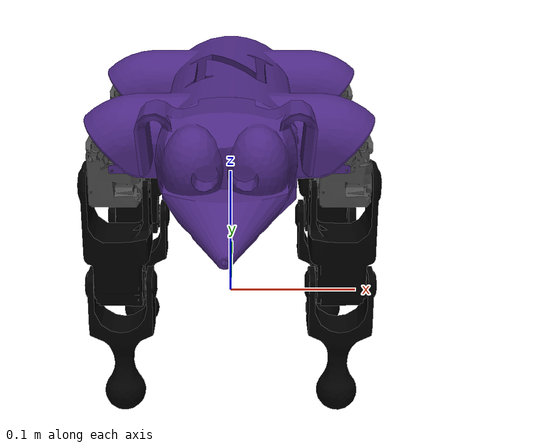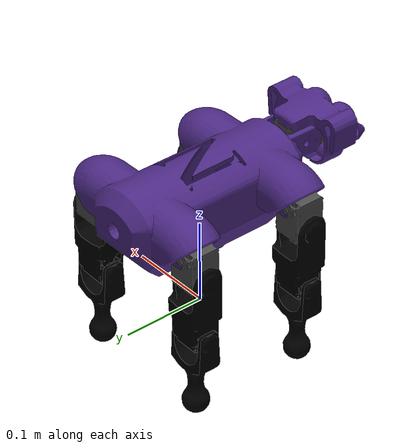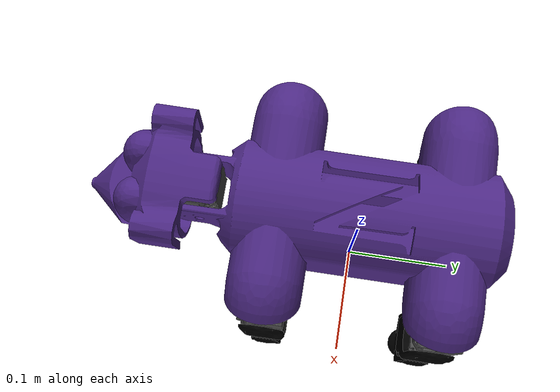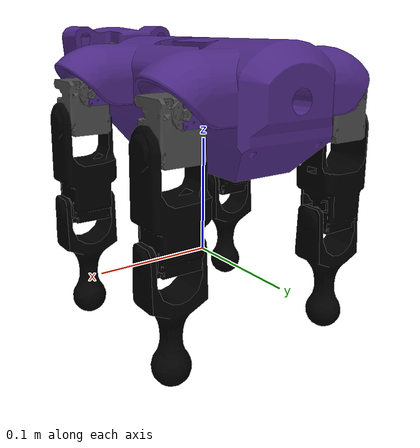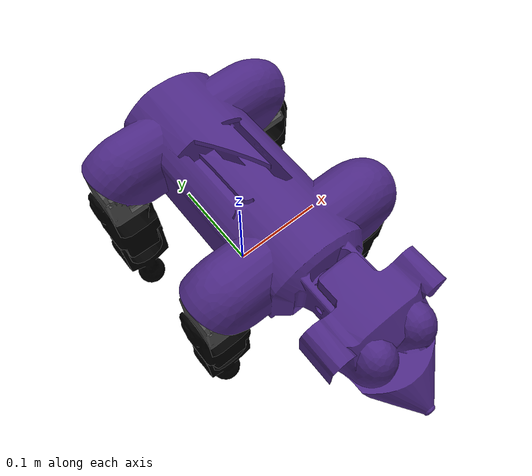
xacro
<?xml version="1.0"?>
<robot name="rudy" xmlns:xacro="http://www.ros.org/wiki/xacro">
    <!--Load in the Xacros created to establish the colors of the rudy-->
    <xacro:include filename="$(find rudy_description)/urdf/common_properties.urdf.xacro"/>

    <!-- Define color property from Launch File to set the color and namespace -->
    <xacro:arg name="color" default="purple"/>
    <xacro:property name="color" value="$(arg color)"/>

    <!-- Use the Xacros to build the URDF-->
    <link name="base_footprint"/>

    <!-- Set the BaseLink -->
    <link name="base_link">
        <visual>
        <origin xyz="0.0 0.0 0.0" rpy="0 0 0"/>
        <geometry>
            <mesh filename="package://rudy_description/meshes/Body_Link.stl"/>
        </geometry>
        <material name="${color}"/>
        </visual>

        <!-- Origin Offset for Collision to counteract stl frame shift -->
        <collision>
        <origin xyz="0.0 0.0 0.0" rpy="0 0 0"/>
        <geometry>
            <mesh filename="package://rudy_description/meshes/Body_Link_Collision.stl"/>
        </geometry>
        </collision>

        <!-- to do Update Mass with assembled body hull mass -->
        <inertial>
            <!-- COM relative to link origin with shift to align -->
        <origin xyz="0.0 0.0 0.0" rpy="0 0 0"/>
        <mass value="0.846"/>
            <!--  Inertia about COM -->
        <inertia ixx="0.005" ixy="3.724e-06" ixz="7.987e-07" iyx="3.724e-06" iyy="0.006" iyz="-8.377e-05" izx="7.987e-07" izy="-8.377e-05" izz="0.002" />
        </inertial>
    </link>

    <!-- Connect the footprint to the base_link -->
    <joint name="base_joint" type="fixed">
        <parent link="base_footprint"/>
        <child link="base_link"/>
        <origin xyz="0.0 0.0 0.1" rpy="0 0 0"/>
    </joint>

    <!-- Set the left front hip motor link:-->
    <link name="front_left_hip_motor_link">
        <visual>
        <origin xyz="-0.01 0 0" rpy="0 0 0"/>
        <geometry>
            <mesh filename="package://rudy_description/meshes/Dual_Motor.stl"/>
        </geometry>
        <material name="dark"/>
        </visual>

        <collision>
        <origin xyz="-0.01 0 0" rpy="0 0 0"/>
        <geometry>
            <mesh filename="package://rudy_description/meshes/Dual_Motor_Collision.stl"/>
        </geometry>
        </collision>

        <inertial>
        <origin xyz="0 0 0" />
        <mass value="0.1" />
        <inertia ixx="0.0" ixy="1.817e-07" ixz="2.389e-06" iyx="1.817e-07" iyy="9.092e-05" iyz="-1.83e-07" izx="2.389e-06" izy="-1.831e-07" izz="0.0" />
        </inertial>
    </link>

    <!-- Set the left front hip motor:-->
    <joint name="front_left_hip_abduct_joint" type="continuous">
        <parent link="base_link"/>
        <child link="front_left_hip_motor_link"/>
        <origin xyz="-0.08 -0.07 0.036" rpy="0 -1.57 0"/>
        <axis xyz="0 1 0"/>
    </joint>

    <!-- Set the right front hip motor link:-->
    <link name="front_right_hip_motor_link">
        <visual>
        <origin xyz="-0.01 0 0" rpy="0 0 0"/>
        <geometry>
            <mesh filename="package://rudy_description/meshes/Dual_Motor.stl"/>
        </geometry>
        <material name="dark"/>
        </visual>

        <collision>
        <origin xyz="-0.01 0 0" rpy="0 0 0"/>
        <geometry>
            <mesh filename="package://rudy_description/meshes/Dual_Motor_Collision.stl"/>
        </geometry>
        </collision>

        <inertial>
        <origin xyz="0 0 0" />
        <mass value="0.1" />
        <inertia ixx="0.0" ixy="1.817e-07" ixz="2.389e-06" iyx="1.817e-07" iyy="9.092e-05" iyz="-1.83e-07" izx="2.389e-06" izy="-1.831e-07" izz="0.0" />
        </inertial>
    </link>

    <!-- Set the right front hip motor:-->
    <joint name="front_right_hip_abduct_joint" type="continuous">
        <parent link="base_link"/>
        <child link="front_right_hip_motor_link"/>
        <origin xyz="0.08 -0.07 0.036" rpy="0 -1.57 0"/>
        <axis xyz="0 1 0"/>
    </joint>

    <!-- Set the Right Back hip motor link:-->
    <link name="back_right_hip_motor_link">
        <visual>
        <origin xyz="-0.01 0 0.0" rpy="0 0 0"/>
        <geometry>
            <mesh filename="package://rudy_description/meshes/Dual_Motor.stl"/>
        </geometry>
        <material name="dark"/>
        </visual>

        <collision>
        <origin xyz="-0.01 0 0.0" rpy="0 0 0"/>
        <geometry>
            <mesh filename="package://rudy_description/meshes/Dual_Motor_Collision.stl"/>
        </geometry>
        </collision>

        <inertial>
        <origin xyz="0 0 0" />
        <mass value="0.1" />
        <inertia ixx="0.0" ixy="1.817e-07" ixz="2.389e-06" iyx="1.817e-07" iyy="9.092e-05" iyz="-1.83e-07" izx="2.389e-06" izy="-1.831e-07" izz="0.0" />
        </inertial>
    </link>

    <!-- Set the right back hip motor:-->
    <joint name="back_right_hip_abduct_joint" type="continuous">
        <parent link="base_link"/>
        <child link="back_right_hip_motor_link"/>
        <origin xyz="0.08 0.0725 0.036" rpy="0 -1.57 0"/>
        <axis xyz="0 1 0"/>
    </joint>

    <!-- Set the Left Back hip motor link:-->
    <link name="back_left_hip_motor_link">
        <visual>
        <origin xyz="-0.01 0 0.0" rpy="0 0 0"/>
        <geometry>
            <mesh filename="package://rudy_description/meshes/Dual_Motor.stl"/>
        </geometry>
        <material name="dark"/>
        </visual>

        <collision>
        <origin xyz="-0.01 0 0.0" rpy="0 0 0"/>
        <geometry>
            <mesh filename="package://rudy_description/meshes/Dual_Motor_Collision.stl"/>
        </geometry>
        </collision>

        <inertial>
        <origin xyz="0 0 0" />
        <mass value="0.1" />
        <inertia ixx="0.0" ixy="1.817e-07" ixz="2.389e-06" iyx="1.817e-07" iyy="9.092e-05" iyz="-1.83e-07" izx="2.389e-06" izy="-1.831e-07" izz="0.0" />
        </inertial>
    </link>

    <!-- Set the Left back hip motor:-->
    <joint name="back_left_hip_abduct_joint" type="continuous">
        <parent link="base_link"/>
        <child link="back_left_hip_motor_link"/>
        <origin xyz="-0.08 0.0725 0.036" rpy="0 -1.57 0"/>
        <axis xyz="0 1 0"/>
    </joint>

    <!-- Set the left front hip link:-->
    <link name="front_left_hip_link">
        <visual>
        <origin xyz="-0.0825 0 -0.0235" rpy="0 -1.57 -3.14"/>
        <geometry>
            <mesh filename="package://rudy_description/meshes/Hip_Link.stl"/>
        </geometry>
        <material name="black"/>
        </visual>

        <collision>
        <origin xyz="-0.0825 0 -0.0235" rpy="0 -1.57 -3.14"/>
        <geometry>
            <mesh filename="package://rudy_description/meshes/Hip_Link_Collision.stl"/>
        </geometry>
        </collision>

        <inertial>
        <origin xyz="0 0 0" />
        <mass value="0.15" />
        <inertia ixx="6.020e-05" ixy="8.926e-08" ixz="1.687e-08" iyx="8.926e-08" iyy="2.533e-05" iyz="-5.955e-06" izx="1.687e-08" izy="-5.955e-06" izz="5.369e-05" />
        </inertial>
    </link>

    <!-- Set the left front hip joint:-->
    <joint name="front_left_hip_flexion_joint" type="continuous">
        <parent link="front_left_hip_motor_link"/>
        <child link="front_left_hip_link"/>
        <origin xyz="-0.0225 0.0 0.0" rpy="0 0 0"/>
        <axis xyz="0 0 1"/>
    </joint>

    <!-- Set the left back hip link:-->
    <link name="back_left_hip_link">
        <visual>
        <origin xyz="-0.0825 0 -0.0235" rpy="0 -1.57 -3.14"/>
        <geometry>
            <mesh filename="package://rudy_description/meshes/Hip_Link.stl"/>
        </geometry>
        <material name="black"/>
        </visual>

        <collision>
        <origin xyz="-0.0825 0 -0.0235" rpy="0 -1.57 -3.14"/>
        <geometry>
            <mesh filename="package://rudy_description/meshes/Hip_Link_Collision.stl"/>
        </geometry>
        </collision>

        <inertial>
        <origin xyz="0 0 0" />
        <mass value="0.15" />
        <inertia ixx="6.020e-05" ixy="8.926e-08" ixz="1.687e-08" iyx="8.926e-08" iyy="2.533e-05" iyz="-5.955e-06" izx="1.687e-08" izy="-5.955e-06" izz="5.369e-05" />        </inertial>
    </link>

    <!-- Set the left back hip joint:-->
    <joint name="back_left_hip_flexion_joint" type="continuous">
        <parent link="back_left_hip_motor_link"/>
        <child link="back_left_hip_link"/>
        <origin xyz="-0.0225 0.0 0.0" rpy="0 0 0"/>
        <axis xyz="0 0 1"/>
    </joint>

    <!-- Set the right front hip link:-->
    <link name="front_right_hip_link">
        <visual>
        <origin xyz="-0.0825 0 0.0235" rpy="0 1.57 0"/>
        <geometry>
            <mesh filename="package://rudy_description/meshes/Hip_Link.stl"/>
        </geometry>
        <material name="black"/>
        </visual>

        <collision>
        <origin xyz="-0.0825 0 0.0235" rpy="0 1.57 0"/>
        <geometry>
            <mesh filename="package://rudy_description/meshes/Hip_Link_Collision.stl"/>
        </geometry>
        </collision>

        <inertial>
        <origin xyz="0 0 0" />
        <mass value="0.15" />
        <inertia ixx="6.020e-05" ixy="8.926e-08" ixz="1.687e-08" iyx="8.926e-08" iyy="2.533e-05" iyz="-5.955e-06" izx="1.687e-08" izy="-5.955e-06" izz="5.369e-05" />        </inertial>
    </link>

    <!-- Set the right front hip joint:-->
    <joint name="front_right_hip_flexion_joint" type="continuous">
        <parent link="front_right_hip_motor_link"/>
        <child link="front_right_hip_link"/>
        <origin xyz="-0.0225 0.0 0.0" rpy="0 0 0"/>
        <axis xyz="0 0 1"/>
    </joint>

    <!-- Set the right back hip link:-->
    <link name="back_right_hip_link">
        <visual>
        <origin xyz="-0.0825 0 0.0235" rpy="0 1.57 0"/>
        <geometry>
            <mesh filename="package://rudy_description/meshes/Hip_Link.stl"/>
        </geometry>
        <material name="black"/>
        </visual>

        <collision>
        <origin xyz="-0.0825 0 0.0235" rpy="0 1.57 0"/>
        <geometry>
            <mesh filename="package://rudy_description/meshes/Hip_Link_Collision.stl"/>
        </geometry>
        </collision>

        <inertial>
        <origin xyz="0 0 0" />
        <!-- These will need to be updated on the final build -->
        <mass value="0.15" />
        <inertia ixx="6.020e-05" ixy="8.926e-08" ixz="1.687e-08" iyx="8.926e-08" iyy="2.533e-05" iyz="-5.955e-06" izx="1.687e-08" izy="-5.955e-06" izz="5.369e-05" />        </inertial>
    </link>

    <!-- Set the right back hip joint:-->
    <joint name="back_right_hip_flexion_joint" type="continuous">
        <parent link="back_right_hip_motor_link"/>
        <child link="back_right_hip_link"/>
        <origin xyz="-0.0225 0.0 0.0" rpy="0 0 0"/>
        <axis xyz="0 0 1"/>
    </joint>

 <!-- Set the left front Foot link:-->
    <link name="front_left_Foot_link">
        <visual>
        <origin xyz="-0.0275 0.001 0" rpy="-1.57 0 1.57"/>
        <geometry>
            <mesh filename="package://rudy_description/meshes/Foot_Link.stl"/>
        </geometry>
        <material name="black"/>
        </visual>

        <collision>
        <origin xyz="-0.0275 0.001 0" rpy="-1.57 0 1.57"/>
        <geometry>
            <mesh filename="package://rudy_description/meshes/Foot_Link_Collision.stl"/>
        </geometry>
        </collision>

        <inertial>
        <origin xyz="0 0 0" />
        <mass value="0.053" />
        <inertia ixx="5.075e-05" ixy="-1.633e-10" ixz="-2.788e-10" iyx="-1.633e-10" iyy="5.706e-05" iyz="1.569e-09" izx="-2.788e-10" izy="1.569e-09" izz="1.162e-05" />
        </inertial>
    </link>

    <!-- Set the left front Knee joint:-->
    <joint name="front_left_knee_flexion_joint" type="continuous">
        <parent link="front_left_hip_link"/>
        <child link="front_left_Foot_link"/>
        <origin xyz="-0.0775 0.0 0.0" rpy="0 0 0"/>
        <axis xyz="0 0 1"/>
    </joint>

     <!-- Set the left back Foot link:-->
    <link name="back_left_Foot_link">
        <visual>
        <origin xyz="-0.0275 0.001 0" rpy="-1.57 0 1.57"/>
        <geometry>
            <mesh filename="package://rudy_description/meshes/Foot_Link.stl"/>
        </geometry>
        <material name="black"/>
        </visual>

        <collision>
        <origin xyz="-0.0275 0.001 0" rpy="-1.57 0 1.57"/>
        <geometry>
            <mesh filename="package://rudy_description/meshes/Foot_Link_Collision.stl"/>
        </geometry>
        </collision>

        <inertial>
        <origin xyz="0 0 0" />
        <mass value="0.053" />
        <inertia ixx="5.075e-05" ixy="-1.633e-10" ixz="-2.788e-10" iyx="-1.633e-10" iyy="5.706e-05" iyz="1.569e-09" izx="-2.788e-10" izy="1.569e-09" izz="1.162e-05" />        </inertial>
    </link>

    <!-- Set the left back Knee joint:-->
    <joint name="back_left_knee_flexion_joint" type="continuous">
        <parent link="back_left_hip_link"/>
        <child link="back_left_Foot_link"/>
        <origin xyz="-0.0775 0.0 0.0" rpy="0 0 0"/>
        <axis xyz="0 0 1"/>
    </joint>

    <!-- Set the right front Foot link:-->
    <link name="front_right_Foot_link">
        <visual>
        <origin xyz="-0.0275 0.001 0" rpy="-1.57 0 1.57"/>
        <geometry>
            <mesh filename="package://rudy_description/meshes/Foot_Link.stl"/>
        </geometry>
        <material name="black"/>
        </visual>

        <collision>
        <origin xyz="-0.0275 0.001 0" rpy="-1.57 0 1.57"/>
        <geometry>
            <mesh filename="package://rudy_description/meshes/Foot_Link_Collision.stl"/>
        </geometry>
        </collision>

        <inertial>
        <origin xyz="0 0 0" />
        <mass value="0.053" />
        <inertia ixx="5.075e-05" ixy="-1.633e-10" ixz="-2.788e-10" iyx="-1.633e-10" iyy="5.706e-05" iyz="1.569e-09" izx="-2.788e-10" izy="1.569e-09" izz="1.162e-05" />        </inertial>
    </link>

    <!-- Set the right front Knee joint:-->
    <joint name="front_right_knee_flexion_joint" type="continuous">
        <parent link="front_right_hip_link"/>
        <child link="front_right_Foot_link"/>
        <origin xyz="-0.0775 0.0 0.0" rpy="0 0 0"/>
        <axis xyz="0 0 1"/>
    </joint>

    <!-- Set the right back Foot link:-->
    <link name="back_right_Foot_link">
        <visual>
        <origin xyz="-0.0275 0.001 0" rpy="-1.57 0 1.57"/>
        <geometry>
            <mesh filename="package://rudy_description/meshes/Foot_Link.stl"/>
        </geometry>
        <material name="black"/>
        </visual>

        <collision>
        <origin xyz="-0.0275 0.001 0" rpy="-1.57 0 1.57"/>
        <geometry>
            <mesh filename="package://rudy_description/meshes/Foot_Link_Collision.stl"/>
        </geometry>
        </collision>

        <inertial>
        <origin xyz="0 0 0" />
        <mass value="0.053" />
        <inertia ixx="5.075e-05" ixy="-1.633e-10" ixz="-2.788e-10" iyx="-1.633e-10" iyy="5.706e-05" iyz="1.569e-09" izx="-2.788e-10" izy="1.569e-09" izz="1.162e-05" />        </inertial>
    </link>

    <!-- Set the right back Knee joint:-->
    <joint name="back_right_knee_flexion_joint" type="continuous">
        <parent link="back_right_hip_link"/>
        <child link="back_right_Foot_link"/>
        <origin xyz="-0.0775 0.0 0.0" rpy="0 0 0"/>
        <axis xyz="0 0 1"/>
    </joint>

    <!-- If you decide to attach a mounted head to this model, do so here -->
    <!-- Set the head motor link:-->
    <link name="head_motor_link">
        <visual>
        <origin xyz="0 -0.01 0" rpy="0 0 -1.57"/>
        <geometry>
            <mesh filename="package://rudy_description/meshes/Dual_Motor.stl"/>
        </geometry>
        <material name="dark"/>
        </visual>

        <collision>
        <origin xyz="0 -0.01 0" rpy="0 0 -1.57"/>
        <geometry>
            <mesh filename="package://rudy_description/meshes/Dual_Motor_Collision.stl"/>
        </geometry>
        </collision>

        <inertial>
        <origin xyz="0 0 0" />
        <mass value="0.1" />
        <inertia ixx="0.0" ixy="1.817e-07" ixz="2.389e-06" iyx="1.817e-07" iyy="9.092e-05" iyz="-1.83e-07" izx="2.389e-06" izy="-1.831e-07" izz="0.0" />
        </inertial>
    </link>

    <!-- Set the head lift joint:-->
    <joint name="head_lift_motor_joint" type="continuous">
        <parent link="base_link"/>
        <child link="head_motor_link"/>
        <origin xyz="0.0 -0.12825 0.06" rpy="0 -1.57 0"/>
        <axis xyz="0 0 1"/>
    </joint>

    <!-- Set the head link:-->
    <link name="head_link">
        <visual>
        <origin xyz="-0.01 -0.0275 0" rpy="-1.57 0 -3.14"/>
        <geometry>
            <mesh filename="package://rudy_description/meshes/Head_Link.stl"/>
        </geometry>
        <material name="purple"/>
        </visual>

        <collision>
        <origin xyz="-0.01 -0.0275 0" rpy="-1.57 0 -3.14"/>
        <geometry>
            <mesh filename="package://rudy_description/meshes/Head_Link_Collision.stl"/>
        </geometry>
        </collision>

        <inertial>
        <origin xyz="0 0 0" />
        <mass value="0.234" />
        <inertia ixx="0.0" ixy="3.552e-07" ixz="2.919e-07" iyx="3.552e-07" iyy="0.0" iyz="5.278e-05" izx="2.919e-07" izy="5.278e-07" izz="0.0" />
        </inertial>
    </link>

    <!-- Set the Head swiveljoint:-->
    <joint name="head_swivel_joint" type="continuous">
        <parent link="head_motor_link"/>
        <child link="head_link"/>
        <origin xyz="0 -0.0225 0" rpy="0 0 0"/>
        <axis xyz="1 0 0"/>
    </joint>

</robot>

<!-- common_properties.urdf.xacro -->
<robot name="xacro_properties" xmlns:xacro="http://ros.org/wiki/xacro">

  <!-- Material Color for Visualization-->
  <material name="black">
    <color rgba="0.0 0.0 0.0 1.0"/>
  </material>

  <material name="dark">
    <color rgba="0.3 0.3 0.3 1.0"/>
  </material>

  <material name="light_black">
    <color rgba="0.4 0.4 0.4 1.0"/>
  </material>

  <material name="purple">
    <color rgba="0.3 0.16 0.52 1.0"/>
  </material>

  <material name="red">
    <color rgba="1.0 0.0 0.0 1.0"/>
  </material>

  <material name="blue">
    <color rgba="0.0 0.0 0.8 1.0"/>
  </material>

  <material name="green">
    <color rgba="0.0 0.8 0.0 1.0"/>
  </material>

  <material name="grey">
    <color rgba="0.5 0.5 0.5 1.0"/>
  </material>

  <material name="orange">
    <color rgba="${255/255} ${108/255} ${10/255} 1.0"/>
  </material>

  <material name="brown">
    <color rgba="${222/255} ${207/255} ${195/255} 1.0"/>
  </material>

  <material name="white">
    <color rgba="1.0 1.0 1.0 1.0"/>
  </material>

</robot>
